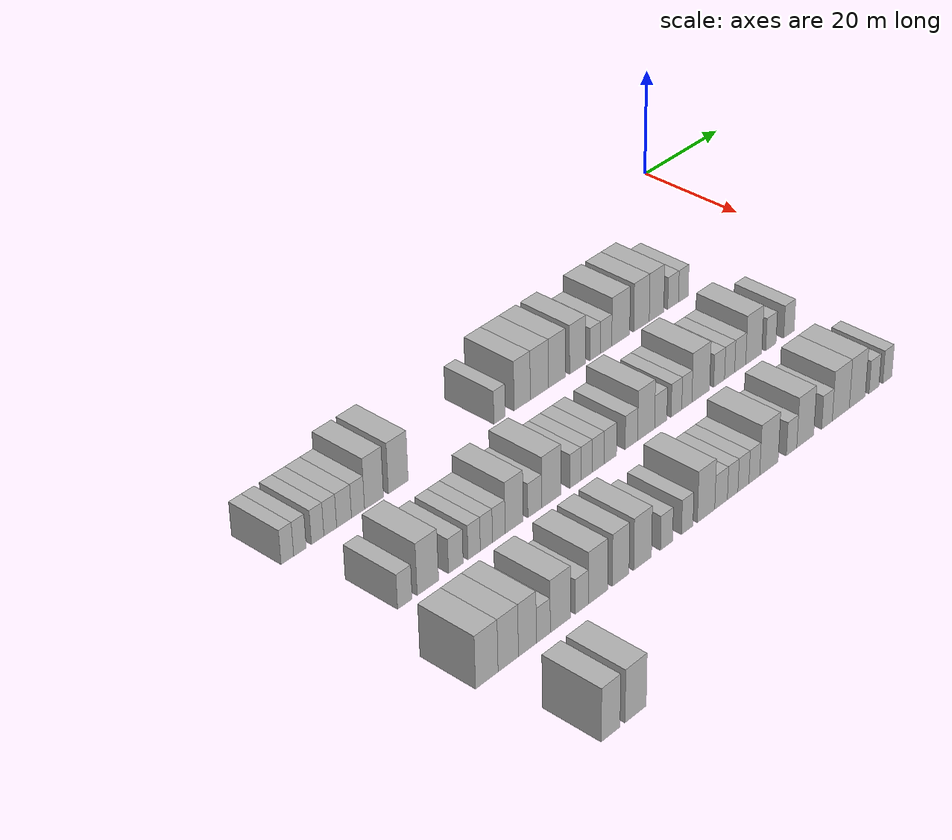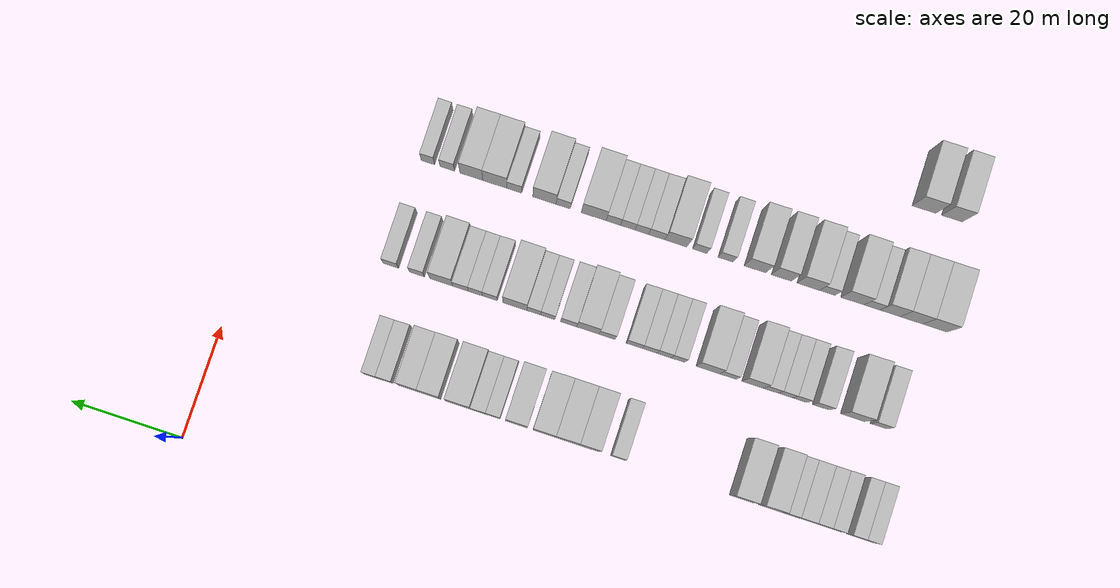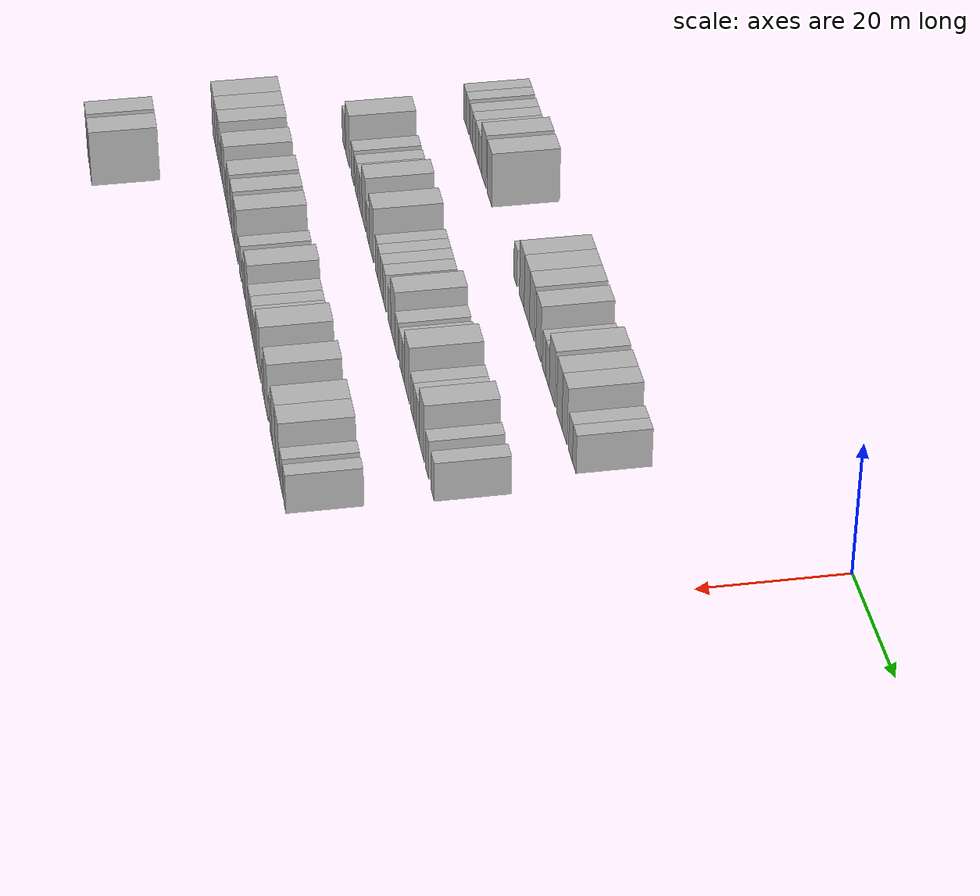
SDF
<sdf version="1.6">
 <world name="default">
  <model name="building_62">
   <static>1</static>
   <pose>25.0000 -115.1257 0 0.000000 0.000000 0.000000</pose>
   <link name="link">
    <pose>0 0 3.00 0 0 0</pose>
    <collision name="collision"><geometry><box><size>10.0000 2.4393 6.0000</size></box></geometry></collision>
    <visual name="visual">
     <cast_shadows>0</cast_shadows>
     <geometry><box><size>10.0000 2.4393 6.0000</size></box></geometry>
     <material>
      <script>
       <uri>model://HANNAS_wall/materials/scripts</uri>
       <uri>model://HANNAS_wall/materials/textures</uri>
       <name>vrc/HANNAS_wall</name>
      </script>
     </material>
    </visual>
   </link>
  </model>
  <model name="building_63">
   <static>1</static>
   <pose>25.0000 -112.6765 0 0.000000 0.000000 0.000000</pose>
   <link name="link">
    <pose>0 0 3.00 0 0 0</pose>
    <collision name="collision"><geometry><box><size>10.0000 2.4591 6.0000</size></box></geometry></collision>
    <visual name="visual">
     <cast_shadows>0</cast_shadows>
     <geometry><box><size>10.0000 2.4591 6.0000</size></box></geometry>
     <material>
      <script>
       <uri>model://HANNAS_wall/materials/scripts</uri>
       <uri>model://HANNAS_wall/materials/textures</uri>
       <name>vrc/HANNAS_wall</name>
      </script>
     </material>
    </visual>
   </link>
  </model>
  <model name="building_64">
   <static>1</static>
   <pose>25.0000 -109.2136 0 0.000000 0.000000 0.000000</pose>
   <link name="link">
    <pose>0 0 3.00 0 0 0</pose>
    <collision name="collision"><geometry><box><size>10.0000 2.4668 6.0000</size></box></geometry></collision>
    <visual name="visual">
     <cast_shadows>0</cast_shadows>
     <geometry><box><size>10.0000 2.4668 6.0000</size></box></geometry>
     <material>
      <script>
       <uri>model://HANNAS_wall/materials/scripts</uri>
       <uri>model://HANNAS_wall/materials/textures</uri>
       <name>vrc/HANNAS_wall</name>
      </script>
     </material>
    </visual>
   </link>
  </model>
  <model name="building_65">
   <static>1</static>
   <pose>25.0000 -106.7141 0 0.000000 0.000000 0.000000</pose>
   <link name="link">
    <pose>0 0 3.00 0 0 0</pose>
    <collision name="collision"><geometry><box><size>10.0000 2.5322 6.0000</size></box></geometry></collision>
    <visual name="visual">
     <cast_shadows>0</cast_shadows>
     <geometry><box><size>10.0000 2.5322 6.0000</size></box></geometry>
     <material>
      <script>
       <uri>model://HANNAS_wall/materials/scripts</uri>
       <uri>model://HANNAS_wall/materials/textures</uri>
       <name>vrc/HANNAS_wall</name>
      </script>
     </material>
    </visual>
   </link>
  </model>
  <model name="building_66">
   <static>1</static>
   <pose>25.0000 -103.9539 0 0.000000 0.000000 0.000000</pose>
   <link name="link">
    <pose>0 0 3.00 0 0 0</pose>
    <collision name="collision"><geometry><box><size>10.0000 2.9881 6.0000</size></box></geometry></collision>
    <visual name="visual">
     <cast_shadows>0</cast_shadows>
     <geometry><box><size>10.0000 2.9881 6.0000</size></box></geometry>
     <material>
      <script>
       <uri>model://HANNAS_wall/materials/scripts</uri>
       <uri>model://HANNAS_wall/materials/textures</uri>
       <name>vrc/HANNAS_wall</name>
      </script>
     </material>
    </visual>
   </link>
  </model>
  <model name="building_67">
   <static>1</static>
   <pose>25.0000 -101.1364 0 0.000000 0.000000 0.000000</pose>
   <link name="link">
    <pose>0 0 3.00 0 0 0</pose>
    <collision name="collision"><geometry><box><size>10.0000 2.6470 6.0000</size></box></geometry></collision>
    <visual name="visual">
     <cast_shadows>0</cast_shadows>
     <geometry><box><size>10.0000 2.6470 6.0000</size></box></geometry>
     <material>
      <script>
       <uri>model://HANNAS_wall/materials/scripts</uri>
       <uri>model://HANNAS_wall/materials/textures</uri>
       <name>vrc/HANNAS_wall</name>
      </script>
     </material>
    </visual>
   </link>
  </model>
  <model name="building_68">
   <static>1</static>
   <pose>25.0000 -97.8725 0 0.000000 0.000000 0.000000</pose>
   <link name="link">
    <pose>0 0 4.50 0 0 0</pose>
    <collision name="collision"><geometry><box><size>10.0000 3.8809 9.0000</size></box></geometry></collision>
    <visual name="visual">
     <cast_shadows>0</cast_shadows>
     <geometry><box><size>10.0000 3.8809 9.0000</size></box></geometry>
     <material>
      <script>
       <uri>model://HANNAS_wall/materials/scripts</uri>
       <uri>model://HANNAS_wall/materials/textures</uri>
       <name>vrc/HANNAS_wall</name>
      </script>
     </material>
    </visual>
   </link>
  </model>
  <model name="building_69">
   <static>1</static>
   <pose>25.0000 -92.8758 0 0.000000 0.000000 0.000000</pose>
   <link name="link">
    <pose>0 0 4.50 0 0 0</pose>
    <collision name="collision"><geometry><box><size>10.0000 4.1125 9.0000</size></box></geometry></collision>
    <visual name="visual">
     <cast_shadows>0</cast_shadows>
     <geometry><box><size>10.0000 4.1125 9.0000</size></box></geometry>
     <material>
      <script>
       <uri>model://HANNAS_wall/materials/scripts</uri>
       <uri>model://HANNAS_wall/materials/textures</uri>
       <name>vrc/HANNAS_wall</name>
      </script>
     </material>
    </visual>
   </link>
  </model>
  <model name="building_70">
   <static>1</static>
   <pose>25.0000 -71.0035 0 0.000000 0.000000 0.000000</pose>
   <link name="link">
    <pose>0 0 3.00 0 0 0</pose>
    <collision name="collision"><geometry><box><size>10.0000 2.5440 6.0000</size></box></geometry></collision>
    <visual name="visual">
     <cast_shadows>0</cast_shadows>
     <geometry><box><size>10.0000 2.5440 6.0000</size></box></geometry>
     <material>
      <script>
       <uri>model://HANNAS_wall/materials/scripts</uri>
       <uri>model://HANNAS_wall/materials/textures</uri>
       <name>vrc/HANNAS_wall</name>
      </script>
     </material>
    </visual>
   </link>
  </model>
  <model name="building_71">
   <static>1</static>
   <pose>25.0000 -65.8801 0 0.000000 0.000000 0.000000</pose>
   <link name="link">
    <pose>0 0 4.50 0 0 0</pose>
    <collision name="collision"><geometry><box><size>10.0000 3.7028 9.0000</size></box></geometry></collision>
    <visual name="visual">
     <cast_shadows>0</cast_shadows>
     <geometry><box><size>10.0000 3.7028 9.0000</size></box></geometry>
     <material>
      <script>
       <uri>model://HANNAS_wall/materials/scripts</uri>
       <uri>model://HANNAS_wall/materials/textures</uri>
       <name>vrc/HANNAS_wall</name>
      </script>
     </material>
    </visual>
   </link>
  </model>
  <model name="building_72">
   <static>1</static>
   <pose>25.0000 -61.9524 0 0.000000 0.000000 0.000000</pose>
   <link name="link">
    <pose>0 0 4.50 0 0 0</pose>
    <collision name="collision"><geometry><box><size>10.0000 4.1525 9.0000</size></box></geometry></collision>
    <visual name="visual">
     <cast_shadows>0</cast_shadows>
     <geometry><box><size>10.0000 4.1525 9.0000</size></box></geometry>
     <material>
      <script>
       <uri>model://HANNAS_wall/materials/scripts</uri>
       <uri>model://HANNAS_wall/materials/textures</uri>
       <name>vrc/HANNAS_wall</name>
      </script>
     </material>
    </visual>
   </link>
  </model>
  <model name="building_73">
   <static>1</static>
   <pose>25.0000 -57.9038 0 0.000000 0.000000 0.000000</pose>
   <link name="link">
    <pose>0 0 4.50 0 0 0</pose>
    <collision name="collision"><geometry><box><size>10.0000 3.9448 9.0000</size></box></geometry></collision>
    <visual name="visual">
     <cast_shadows>0</cast_shadows>
     <geometry><box><size>10.0000 3.9448 9.0000</size></box></geometry>
     <material>
      <script>
       <uri>model://HANNAS_wall/materials/scripts</uri>
       <uri>model://HANNAS_wall/materials/textures</uri>
       <name>vrc/HANNAS_wall</name>
      </script>
     </material>
    </visual>
   </link>
  </model>
  <model name="building_74">
   <static>1</static>
   <pose>25.0000 -53.0082 0 0.000000 0.000000 0.000000</pose>
   <link name="link">
    <pose>0 0 4.50 0 0 0</pose>
    <collision name="collision"><geometry><box><size>10.0000 3.8463 9.0000</size></box></geometry></collision>
    <visual name="visual">
     <cast_shadows>0</cast_shadows>
     <geometry><box><size>10.0000 3.8463 9.0000</size></box></geometry>
     <material>
      <script>
       <uri>model://HANNAS_wall/materials/scripts</uri>
       <uri>model://HANNAS_wall/materials/textures</uri>
       <name>vrc/HANNAS_wall</name>
      </script>
     </material>
    </visual>
   </link>
  </model>
  <model name="building_75">
   <static>1</static>
   <pose>25.0000 -48.8169 0 0.000000 0.000000 0.000000</pose>
   <link name="link">
    <pose>0 0 3.00 0 0 0</pose>
    <collision name="collision"><geometry><box><size>10.0000 2.5363 6.0000</size></box></geometry></collision>
    <visual name="visual">
     <cast_shadows>0</cast_shadows>
     <geometry><box><size>10.0000 2.5363 6.0000</size></box></geometry>
     <material>
      <script>
       <uri>model://HANNAS_wall/materials/scripts</uri>
       <uri>model://HANNAS_wall/materials/textures</uri>
       <name>vrc/HANNAS_wall</name>
      </script>
     </material>
    </visual>
   </link>
  </model>
  <model name="building_76">
   <static>1</static>
   <pose>25.0000 -46.1847 0 0.000000 0.000000 0.000000</pose>
   <link name="link">
    <pose>0 0 3.00 0 0 0</pose>
    <collision name="collision"><geometry><box><size>10.0000 2.7281 6.0000</size></box></geometry></collision>
    <visual name="visual">
     <cast_shadows>0</cast_shadows>
     <geometry><box><size>10.0000 2.7281 6.0000</size></box></geometry>
     <material>
      <script>
       <uri>model://HANNAS_wall/materials/scripts</uri>
       <uri>model://HANNAS_wall/materials/textures</uri>
       <name>vrc/HANNAS_wall</name>
      </script>
     </material>
    </visual>
   </link>
  </model>
  <model name="building_77">
   <static>1</static>
   <pose>25.0000 -42.6312 0 0.000000 0.000000 0.000000</pose>
   <link name="link">
    <pose>0 0 4.50 0 0 0</pose>
    <collision name="collision"><geometry><box><size>10.0000 4.3788 9.0000</size></box></geometry></collision>
    <visual name="visual">
     <cast_shadows>0</cast_shadows>
     <geometry><box><size>10.0000 4.3788 9.0000</size></box></geometry>
     <material>
      <script>
       <uri>model://HANNAS_wall/materials/scripts</uri>
       <uri>model://HANNAS_wall/materials/textures</uri>
       <name>vrc/HANNAS_wall</name>
      </script>
     </material>
    </visual>
   </link>
  </model>
  <model name="building_78">
   <static>1</static>
   <pose>25.0000 -37.5233 0 0.000000 0.000000 0.000000</pose>
   <link name="link">
    <pose>0 0 4.50 0 0 0</pose>
    <collision name="collision"><geometry><box><size>10.0000 3.8369 9.0000</size></box></geometry></collision>
    <visual name="visual">
     <cast_shadows>0</cast_shadows>
     <geometry><box><size>10.0000 3.8369 9.0000</size></box></geometry>
     <material>
      <script>
       <uri>model://HANNAS_wall/materials/scripts</uri>
       <uri>model://HANNAS_wall/materials/textures</uri>
       <name>vrc/HANNAS_wall</name>
      </script>
     </material>
    </visual>
   </link>
  </model>
  <model name="building_79">
   <static>1</static>
   <pose>25.0000 -33.7689 0 0.000000 0.000000 0.000000</pose>
   <link name="link">
    <pose>0 0 4.50 0 0 0</pose>
    <collision name="collision"><geometry><box><size>10.0000 3.6720 9.0000</size></box></geometry></collision>
    <visual name="visual">
     <cast_shadows>0</cast_shadows>
     <geometry><box><size>10.0000 3.6720 9.0000</size></box></geometry>
     <material>
      <script>
       <uri>model://HANNAS_wall/materials/scripts</uri>
       <uri>model://HANNAS_wall/materials/textures</uri>
       <name>vrc/HANNAS_wall</name>
      </script>
     </material>
    </visual>
   </link>
  </model>
  <model name="building_80">
   <static>1</static>
   <pose>25.0000 -29.5652 0 0.000000 0.000000 0.000000</pose>
   <link name="link">
    <pose>0 0 3.00 0 0 0</pose>
    <collision name="collision"><geometry><box><size>10.0000 2.7355 6.0000</size></box></geometry></collision>
    <visual name="visual">
     <cast_shadows>0</cast_shadows>
     <geometry><box><size>10.0000 2.7355 6.0000</size></box></geometry>
     <material>
      <script>
       <uri>model://HANNAS_wall/materials/scripts</uri>
       <uri>model://HANNAS_wall/materials/textures</uri>
       <name>vrc/HANNAS_wall</name>
      </script>
     </material>
    </visual>
   </link>
  </model>
  <model name="building_81">
   <static>1</static>
   <pose>25.0000 -26.9501 0 0.000000 0.000000 0.000000</pose>
   <link name="link">
    <pose>0 0 3.00 0 0 0</pose>
    <collision name="collision"><geometry><box><size>10.0000 2.4946 6.0000</size></box></geometry></collision>
    <visual name="visual">
     <cast_shadows>0</cast_shadows>
     <geometry><box><size>10.0000 2.4946 6.0000</size></box></geometry>
     <material>
      <script>
       <uri>model://HANNAS_wall/materials/scripts</uri>
       <uri>model://HANNAS_wall/materials/textures</uri>
       <name>vrc/HANNAS_wall</name>
      </script>
     </material>
    </visual>
   </link>
  </model>
  <model name="building_235">
   <static>1</static>
   <pose>44.0000 -111.3308 0 0.000000 0.000000 0.000000</pose>
   <link name="link">
    <pose>0 0 3.00 0 0 0</pose>
    <collision name="collision"><geometry><box><size>10.0000 2.8627 6.0000</size></box></geometry></collision>
    <visual name="visual">
     <cast_shadows>0</cast_shadows>
     <geometry><box><size>10.0000 2.8627 6.0000</size></box></geometry>
     <material>
      <script>
       <uri>model://HANNAS_wall/materials/scripts</uri>
       <uri>model://HANNAS_wall/materials/textures</uri>
       <name>vrc/HANNAS_wall</name>
      </script>
     </material>
    </visual>
   </link>
  </model>
  <model name="building_236">
   <static>1</static>
   <pose>44.0000 -106.7560 0 0.000000 0.000000 0.000000</pose>
   <link name="link">
    <pose>0 0 4.50 0 0 0</pose>
    <collision name="collision"><geometry><box><size>10.0000 4.2868 9.0000</size></box></geometry></collision>
    <visual name="visual">
     <cast_shadows>0</cast_shadows>
     <geometry><box><size>10.0000 4.2868 9.0000</size></box></geometry>
     <material>
      <script>
       <uri>model://HANNAS_wall/materials/scripts</uri>
       <uri>model://HANNAS_wall/materials/textures</uri>
       <name>vrc/HANNAS_wall</name>
      </script>
     </material>
    </visual>
   </link>
  </model>
  <model name="building_237">
   <static>1</static>
   <pose>44.0000 -101.1149 0 0.000000 0.000000 0.000000</pose>
   <link name="link">
    <pose>0 0 3.00 0 0 0</pose>
    <collision name="collision"><geometry><box><size>10.0000 2.9955 6.0000</size></box></geometry></collision>
    <visual name="visual">
     <cast_shadows>0</cast_shadows>
     <geometry><box><size>10.0000 2.9955 6.0000</size></box></geometry>
     <material>
      <script>
       <uri>model://HANNAS_wall/materials/scripts</uri>
       <uri>model://HANNAS_wall/materials/textures</uri>
       <name>vrc/HANNAS_wall</name>
      </script>
     </material>
    </visual>
   </link>
  </model>
  <model name="building_238">
   <static>1</static>
   <pose>44.0000 -97.3443 0 0.000000 0.000000 0.000000</pose>
   <link name="link">
    <pose>0 0 3.00 0 0 0</pose>
    <collision name="collision"><geometry><box><size>10.0000 2.5456 6.0000</size></box></geometry></collision>
    <visual name="visual">
     <cast_shadows>0</cast_shadows>
     <geometry><box><size>10.0000 2.5456 6.0000</size></box></geometry>
     <material>
      <script>
       <uri>model://HANNAS_wall/materials/scripts</uri>
       <uri>model://HANNAS_wall/materials/textures</uri>
       <name>vrc/HANNAS_wall</name>
      </script>
     </material>
    </visual>
   </link>
  </model>
  <model name="building_239">
   <static>1</static>
   <pose>44.0000 -94.8010 0 0.000000 0.000000 0.000000</pose>
   <link name="link">
    <pose>0 0 3.00 0 0 0</pose>
    <collision name="collision"><geometry><box><size>10.0000 2.5409 6.0000</size></box></geometry></collision>
    <visual name="visual">
     <cast_shadows>0</cast_shadows>
     <geometry><box><size>10.0000 2.5409 6.0000</size></box></geometry>
     <material>
      <script>
       <uri>model://HANNAS_wall/materials/scripts</uri>
       <uri>model://HANNAS_wall/materials/textures</uri>
       <name>vrc/HANNAS_wall</name>
      </script>
     </material>
    </visual>
   </link>
  </model>
  <model name="building_240">
   <static>1</static>
   <pose>44.0000 -92.1967 0 0.000000 0.000000 0.000000</pose>
   <link name="link">
    <pose>0 0 3.00 0 0 0</pose>
    <collision name="collision"><geometry><box><size>10.0000 2.6677 6.0000</size></box></geometry></collision>
    <visual name="visual">
     <cast_shadows>0</cast_shadows>
     <geometry><box><size>10.0000 2.6677 6.0000</size></box></geometry>
     <material>
      <script>
       <uri>model://HANNAS_wall/materials/scripts</uri>
       <uri>model://HANNAS_wall/materials/textures</uri>
       <name>vrc/HANNAS_wall</name>
      </script>
     </material>
    </visual>
   </link>
  </model>
  <model name="building_241">
   <static>1</static>
   <pose>44.0000 -88.9540 0 0.000000 0.000000 0.000000</pose>
   <link name="link">
    <pose>0 0 4.50 0 0 0</pose>
    <collision name="collision"><geometry><box><size>10.0000 3.8177 9.0000</size></box></geometry></collision>
    <visual name="visual">
     <cast_shadows>0</cast_shadows>
     <geometry><box><size>10.0000 3.8177 9.0000</size></box></geometry>
     <material>
      <script>
       <uri>model://HANNAS_wall/materials/scripts</uri>
       <uri>model://HANNAS_wall/materials/textures</uri>
       <name>vrc/HANNAS_wall</name>
      </script>
     </material>
    </visual>
   </link>
  </model>
  <model name="building_242">
   <static>1</static>
   <pose>44.0000 -84.5550 0 0.000000 0.000000 0.000000</pose>
   <link name="link">
    <pose>0 0 3.00 0 0 0</pose>
    <collision name="collision"><geometry><box><size>10.0000 2.9803 6.0000</size></box></geometry></collision>
    <visual name="visual">
     <cast_shadows>0</cast_shadows>
     <geometry><box><size>10.0000 2.9803 6.0000</size></box></geometry>
     <material>
      <script>
       <uri>model://HANNAS_wall/materials/scripts</uri>
       <uri>model://HANNAS_wall/materials/textures</uri>
       <name>vrc/HANNAS_wall</name>
      </script>
     </material>
    </visual>
   </link>
  </model>
  <model name="building_243">
   <static>1</static>
   <pose>44.0000 -80.9716 0 0.000000 0.000000 0.000000</pose>
   <link name="link">
    <pose>0 0 4.50 0 0 0</pose>
    <collision name="collision"><geometry><box><size>10.0000 4.1866 9.0000</size></box></geometry></collision>
    <visual name="visual">
     <cast_shadows>0</cast_shadows>
     <geometry><box><size>10.0000 4.1866 9.0000</size></box></geometry>
     <material>
      <script>
       <uri>model://HANNAS_wall/materials/scripts</uri>
       <uri>model://HANNAS_wall/materials/textures</uri>
       <name>vrc/HANNAS_wall</name>
      </script>
     </material>
    </visual>
   </link>
  </model>
  <model name="building_244">
   <static>1</static>
   <pose>44.0000 -75.6663 0 0.000000 0.000000 0.000000</pose>
   <link name="link">
    <pose>0 0 3.00 0 0 0</pose>
    <collision name="collision"><geometry><box><size>10.0000 2.4240 6.0000</size></box></geometry></collision>
    <visual name="visual">
     <cast_shadows>0</cast_shadows>
     <geometry><box><size>10.0000 2.4240 6.0000</size></box></geometry>
     <material>
      <script>
       <uri>model://HANNAS_wall/materials/scripts</uri>
       <uri>model://HANNAS_wall/materials/textures</uri>
       <name>vrc/HANNAS_wall</name>
      </script>
     </material>
    </visual>
   </link>
  </model>
  <model name="building_245">
   <static>1</static>
   <pose>44.0000 -73.1780 0 0.000000 0.000000 0.000000</pose>
   <link name="link">
    <pose>0 0 3.00 0 0 0</pose>
    <collision name="collision"><geometry><box><size>10.0000 2.5525 6.0000</size></box></geometry></collision>
    <visual name="visual">
     <cast_shadows>0</cast_shadows>
     <geometry><box><size>10.0000 2.5525 6.0000</size></box></geometry>
     <material>
      <script>
       <uri>model://HANNAS_wall/materials/scripts</uri>
       <uri>model://HANNAS_wall/materials/textures</uri>
       <name>vrc/HANNAS_wall</name>
      </script>
     </material>
    </visual>
   </link>
  </model>
  <model name="building_246">
   <static>1</static>
   <pose>44.0000 -70.5518 0 0.000000 0.000000 0.000000</pose>
   <link name="link">
    <pose>0 0 3.00 0 0 0</pose>
    <collision name="collision"><geometry><box><size>10.0000 2.7000 6.0000</size></box></geometry></collision>
    <visual name="visual">
     <cast_shadows>0</cast_shadows>
     <geometry><box><size>10.0000 2.7000 6.0000</size></box></geometry>
     <material>
      <script>
       <uri>model://HANNAS_wall/materials/scripts</uri>
       <uri>model://HANNAS_wall/materials/textures</uri>
       <name>vrc/HANNAS_wall</name>
      </script>
     </material>
    </visual>
   </link>
  </model>
  <model name="building_247">
   <static>1</static>
   <pose>44.0000 -67.7965 0 0.000000 0.000000 0.000000</pose>
   <link name="link">
    <pose>0 0 3.00 0 0 0</pose>
    <collision name="collision"><geometry><box><size>10.0000 2.8105 6.0000</size></box></geometry></collision>
    <visual name="visual">
     <cast_shadows>0</cast_shadows>
     <geometry><box><size>10.0000 2.8105 6.0000</size></box></geometry>
     <material>
      <script>
       <uri>model://HANNAS_wall/materials/scripts</uri>
       <uri>model://HANNAS_wall/materials/textures</uri>
       <name>vrc/HANNAS_wall</name>
      </script>
     </material>
    </visual>
   </link>
  </model>
  <model name="building_248">
   <static>1</static>
   <pose>44.0000 -62.9490 0 0.000000 0.000000 0.000000</pose>
   <link name="link">
    <pose>0 0 3.00 0 0 0</pose>
    <collision name="collision"><geometry><box><size>10.0000 2.8845 6.0000</size></box></geometry></collision>
    <visual name="visual">
     <cast_shadows>0</cast_shadows>
     <geometry><box><size>10.0000 2.8845 6.0000</size></box></geometry>
     <material>
      <script>
       <uri>model://HANNAS_wall/materials/scripts</uri>
       <uri>model://HANNAS_wall/materials/textures</uri>
       <name>vrc/HANNAS_wall</name>
      </script>
     </material>
    </visual>
   </link>
  </model>
  <model name="building_249">
   <static>1</static>
   <pose>44.0000 -59.5218 0 0.000000 0.000000 0.000000</pose>
   <link name="link">
    <pose>0 0 4.50 0 0 0</pose>
    <collision name="collision"><geometry><box><size>10.0000 3.9699 9.0000</size></box></geometry></collision>
    <visual name="visual">
     <cast_shadows>0</cast_shadows>
     <geometry><box><size>10.0000 3.9699 9.0000</size></box></geometry>
     <material>
      <script>
       <uri>model://HANNAS_wall/materials/scripts</uri>
       <uri>model://HANNAS_wall/materials/textures</uri>
       <name>vrc/HANNAS_wall</name>
      </script>
     </material>
    </visual>
   </link>
  </model>
  <model name="building_250">
   <static>1</static>
   <pose>44.0000 -56.0736 0 0.000000 0.000000 0.000000</pose>
   <link name="link">
    <pose>0 0 3.00 0 0 0</pose>
    <collision name="collision"><geometry><box><size>10.0000 2.9265 6.0000</size></box></geometry></collision>
    <visual name="visual">
     <cast_shadows>0</cast_shadows>
     <geometry><box><size>10.0000 2.9265 6.0000</size></box></geometry>
     <material>
      <script>
       <uri>model://HANNAS_wall/materials/scripts</uri>
       <uri>model://HANNAS_wall/materials/textures</uri>
       <name>vrc/HANNAS_wall</name>
      </script>
     </material>
    </visual>
   </link>
  </model>
  <model name="building_251">
   <static>1</static>
   <pose>44.0000 -52.3307 0 0.000000 0.000000 0.000000</pose>
   <link name="link">
    <pose>0 0 3.00 0 0 0</pose>
    <collision name="collision"><geometry><box><size>10.0000 2.5593 6.0000</size></box></geometry></collision>
    <visual name="visual">
     <cast_shadows>0</cast_shadows>
     <geometry><box><size>10.0000 2.5593 6.0000</size></box></geometry>
     <material>
      <script>
       <uri>model://HANNAS_wall/materials/scripts</uri>
       <uri>model://HANNAS_wall/materials/textures</uri>
       <name>vrc/HANNAS_wall</name>
      </script>
     </material>
    </visual>
   </link>
  </model>
  <model name="building_252">
   <static>1</static>
   <pose>44.0000 -49.8270 0 0.000000 0.000000 0.000000</pose>
   <link name="link">
    <pose>0 0 3.00 0 0 0</pose>
    <collision name="collision"><geometry><box><size>10.0000 2.4481 6.0000</size></box></geometry></collision>
    <visual name="visual">
     <cast_shadows>0</cast_shadows>
     <geometry><box><size>10.0000 2.4481 6.0000</size></box></geometry>
     <material>
      <script>
       <uri>model://HANNAS_wall/materials/scripts</uri>
       <uri>model://HANNAS_wall/materials/textures</uri>
       <name>vrc/HANNAS_wall</name>
      </script>
     </material>
    </visual>
   </link>
  </model>
  <model name="building_253">
   <static>1</static>
   <pose>44.0000 -46.4347 0 0.000000 0.000000 0.000000</pose>
   <link name="link">
    <pose>0 0 4.50 0 0 0</pose>
    <collision name="collision"><geometry><box><size>10.0000 4.3364 9.0000</size></box></geometry></collision>
    <visual name="visual">
     <cast_shadows>0</cast_shadows>
     <geometry><box><size>10.0000 4.3364 9.0000</size></box></geometry>
     <material>
      <script>
       <uri>model://HANNAS_wall/materials/scripts</uri>
       <uri>model://HANNAS_wall/materials/textures</uri>
       <name>vrc/HANNAS_wall</name>
      </script>
     </material>
    </visual>
   </link>
  </model>
  <model name="building_254">
   <static>1</static>
   <pose>44.0000 -41.9183 0 0.000000 0.000000 0.000000</pose>
   <link name="link">
    <pose>0 0 3.00 0 0 0</pose>
    <collision name="collision"><geometry><box><size>10.0000 2.6965 6.0000</size></box></geometry></collision>
    <visual name="visual">
     <cast_shadows>0</cast_shadows>
     <geometry><box><size>10.0000 2.6965 6.0000</size></box></geometry>
     <material>
      <script>
       <uri>model://HANNAS_wall/materials/scripts</uri>
       <uri>model://HANNAS_wall/materials/textures</uri>
       <name>vrc/HANNAS_wall</name>
      </script>
     </material>
    </visual>
   </link>
  </model>
  <model name="building_255">
   <static>1</static>
   <pose>44.0000 -39.3065 0 0.000000 0.000000 0.000000</pose>
   <link name="link">
    <pose>0 0 3.00 0 0 0</pose>
    <collision name="collision"><geometry><box><size>10.0000 2.5271 6.0000</size></box></geometry></collision>
    <visual name="visual">
     <cast_shadows>0</cast_shadows>
     <geometry><box><size>10.0000 2.5271 6.0000</size></box></geometry>
     <material>
      <script>
       <uri>model://HANNAS_wall/materials/scripts</uri>
       <uri>model://HANNAS_wall/materials/textures</uri>
       <name>vrc/HANNAS_wall</name>
      </script>
     </material>
    </visual>
   </link>
  </model>
  <model name="building_256">
   <static>1</static>
   <pose>44.0000 -36.6464 0 0.000000 0.000000 0.000000</pose>
   <link name="link">
    <pose>0 0 3.00 0 0 0</pose>
    <collision name="collision"><geometry><box><size>10.0000 2.7929 6.0000</size></box></geometry></collision>
    <visual name="visual">
     <cast_shadows>0</cast_shadows>
     <geometry><box><size>10.0000 2.7929 6.0000</size></box></geometry>
     <material>
      <script>
       <uri>model://HANNAS_wall/materials/scripts</uri>
       <uri>model://HANNAS_wall/materials/textures</uri>
       <name>vrc/HANNAS_wall</name>
      </script>
     </material>
    </visual>
   </link>
  </model>
  <model name="building_257">
   <static>1</static>
   <pose>44.0000 -33.1999 0 0.000000 0.000000 0.000000</pose>
   <link name="link">
    <pose>0 0 4.50 0 0 0</pose>
    <collision name="collision"><geometry><box><size>10.0000 4.1001 9.0000</size></box></geometry></collision>
    <visual name="visual">
     <cast_shadows>0</cast_shadows>
     <geometry><box><size>10.0000 4.1001 9.0000</size></box></geometry>
     <material>
      <script>
       <uri>model://HANNAS_wall/materials/scripts</uri>
       <uri>model://HANNAS_wall/materials/textures</uri>
       <name>vrc/HANNAS_wall</name>
      </script>
     </material>
    </visual>
   </link>
  </model>
  <model name="building_258">
   <static>1</static>
   <pose>44.0000 -28.8112 0 0.000000 0.000000 0.000000</pose>
   <link name="link">
    <pose>0 0 3.00 0 0 0</pose>
    <collision name="collision"><geometry><box><size>10.0000 2.6773 6.0000</size></box></geometry></collision>
    <visual name="visual">
     <cast_shadows>0</cast_shadows>
     <geometry><box><size>10.0000 2.6773 6.0000</size></box></geometry>
     <material>
      <script>
       <uri>model://HANNAS_wall/materials/scripts</uri>
       <uri>model://HANNAS_wall/materials/textures</uri>
       <name>vrc/HANNAS_wall</name>
      </script>
     </material>
    </visual>
   </link>
  </model>
  <model name="building_259">
   <static>1</static>
   <pose>44.0000 -24.1032 0 0.000000 0.000000 0.000000</pose>
   <link name="link">
    <pose>0 0 3.00 0 0 0</pose>
    <collision name="collision"><geometry><box><size>10.0000 2.7388 6.0000</size></box></geometry></collision>
    <visual name="visual">
     <cast_shadows>0</cast_shadows>
     <geometry><box><size>10.0000 2.7388 6.0000</size></box></geometry>
     <material>
      <script>
       <uri>model://HANNAS_wall/materials/scripts</uri>
       <uri>model://HANNAS_wall/materials/textures</uri>
       <name>vrc/HANNAS_wall</name>
      </script>
     </material>
    </visual>
   </link>
  </model>
  <model name="building_413">
   <static>1</static>
   <pose>63.0000 -115.6176 0 0.000000 0.000000 0.000000</pose>
   <link name="link">
    <pose>0 0 4.50 0 0 0</pose>
    <collision name="collision"><geometry><box><size>10.0000 4.4081 9.0000</size></box></geometry></collision>
    <visual name="visual">
     <cast_shadows>0</cast_shadows>
     <geometry><box><size>10.0000 4.4081 9.0000</size></box></geometry>
     <material>
      <script>
       <uri>model://HANNAS_wall/materials/scripts</uri>
       <uri>model://HANNAS_wall/materials/textures</uri>
       <name>vrc/HANNAS_wall</name>
      </script>
     </material>
    </visual>
   </link>
  </model>
  <model name="building_414">
   <static>1</static>
   <pose>63.0000 -111.3985 0 0.000000 0.000000 0.000000</pose>
   <link name="link">
    <pose>0 0 4.50 0 0 0</pose>
    <collision name="collision"><geometry><box><size>10.0000 4.0301 9.0000</size></box></geometry></collision>
    <visual name="visual">
     <cast_shadows>0</cast_shadows>
     <geometry><box><size>10.0000 4.0301 9.0000</size></box></geometry>
     <material>
      <script>
       <uri>model://HANNAS_wall/materials/scripts</uri>
       <uri>model://HANNAS_wall/materials/textures</uri>
       <name>vrc/HANNAS_wall</name>
      </script>
     </material>
    </visual>
   </link>
  </model>
  <model name="building_415">
   <static>1</static>
   <pose>63.0000 -107.5799 0 0.000000 0.000000 0.000000</pose>
   <link name="link">
    <pose>0 0 4.50 0 0 0</pose>
    <collision name="collision"><geometry><box><size>10.0000 3.6071 9.0000</size></box></geometry></collision>
    <visual name="visual">
     <cast_shadows>0</cast_shadows>
     <geometry><box><size>10.0000 3.6071 9.0000</size></box></geometry>
     <material>
      <script>
       <uri>model://HANNAS_wall/materials/scripts</uri>
       <uri>model://HANNAS_wall/materials/textures</uri>
       <name>vrc/HANNAS_wall</name>
      </script>
     </material>
    </visual>
   </link>
  </model>
  <model name="building_416">
   <static>1</static>
   <pose>63.0000 -104.3647 0 0.000000 0.000000 0.000000</pose>
   <link name="link">
    <pose>0 0 3.00 0 0 0</pose>
    <collision name="collision"><geometry><box><size>10.0000 2.8233 6.0000</size></box></geometry></collision>
    <visual name="visual">
     <cast_shadows>0</cast_shadows>
     <geometry><box><size>10.0000 2.8233 6.0000</size></box></geometry>
     <material>
      <script>
       <uri>model://HANNAS_wall/materials/scripts</uri>
       <uri>model://HANNAS_wall/materials/textures</uri>
       <name>vrc/HANNAS_wall</name>
      </script>
     </material>
    </visual>
   </link>
  </model>
  <model name="building_417">
   <static>1</static>
   <pose>63.0000 -100.8755 0 0.000000 0.000000 0.000000</pose>
   <link name="link">
    <pose>0 0 4.50 0 0 0</pose>
    <collision name="collision"><geometry><box><size>10.0000 4.1551 9.0000</size></box></geometry></collision>
    <visual name="visual">
     <cast_shadows>0</cast_shadows>
     <geometry><box><size>10.0000 4.1551 9.0000</size></box></geometry>
     <material>
      <script>
       <uri>model://HANNAS_wall/materials/scripts</uri>
       <uri>model://HANNAS_wall/materials/textures</uri>
       <name>vrc/HANNAS_wall</name>
      </script>
     </material>
    </visual>
   </link>
  </model>
  <model name="building_418">
   <static>1</static>
   <pose>63.0000 -96.4179 0 0.000000 0.000000 0.000000</pose>
   <link name="link">
    <pose>0 0 3.00 0 0 0</pose>
    <collision name="collision"><geometry><box><size>10.0000 2.7601 6.0000</size></box></geometry></collision>
    <visual name="visual">
     <cast_shadows>0</cast_shadows>
     <geometry><box><size>10.0000 2.7601 6.0000</size></box></geometry>
     <material>
      <script>
       <uri>model://HANNAS_wall/materials/scripts</uri>
       <uri>model://HANNAS_wall/materials/textures</uri>
       <name>vrc/HANNAS_wall</name>
      </script>
     </material>
    </visual>
   </link>
  </model>
  <model name="building_419">
   <static>1</static>
   <pose>63.0000 -93.0147 0 0.000000 0.000000 0.000000</pose>
   <link name="link">
    <pose>0 0 4.50 0 0 0</pose>
    <collision name="collision"><geometry><box><size>10.0000 4.0462 9.0000</size></box></geometry></collision>
    <visual name="visual">
     <cast_shadows>0</cast_shadows>
     <geometry><box><size>10.0000 4.0462 9.0000</size></box></geometry>
     <material>
      <script>
       <uri>model://HANNAS_wall/materials/scripts</uri>
       <uri>model://HANNAS_wall/materials/textures</uri>
       <name>vrc/HANNAS_wall</name>
      </script>
     </material>
    </visual>
   </link>
  </model>
  <model name="building_420">
   <static>1</static>
   <pose>63.0000 -88.1914 0 0.000000 0.000000 0.000000</pose>
   <link name="link">
    <pose>0 0 4.50 0 0 0</pose>
    <collision name="collision"><geometry><box><size>10.0000 3.6005 9.0000</size></box></geometry></collision>
    <visual name="visual">
     <cast_shadows>0</cast_shadows>
     <geometry><box><size>10.0000 3.6005 9.0000</size></box></geometry>
     <material>
      <script>
       <uri>model://HANNAS_wall/materials/scripts</uri>
       <uri>model://HANNAS_wall/materials/textures</uri>
       <name>vrc/HANNAS_wall</name>
      </script>
     </material>
    </visual>
   </link>
  </model>
  <model name="building_421">
   <static>1</static>
   <pose>63.0000 -83.4453 0 0.000000 0.000000 0.000000</pose>
   <link name="link">
    <pose>0 0 4.50 0 0 0</pose>
    <collision name="collision"><geometry><box><size>10.0000 3.8918 9.0000</size></box></geometry></collision>
    <visual name="visual">
     <cast_shadows>0</cast_shadows>
     <geometry><box><size>10.0000 3.8918 9.0000</size></box></geometry>
     <material>
      <script>
       <uri>model://HANNAS_wall/materials/scripts</uri>
       <uri>model://HANNAS_wall/materials/textures</uri>
       <name>vrc/HANNAS_wall</name>
      </script>
     </material>
    </visual>
   </link>
  </model>
  <model name="building_422">
   <static>1</static>
   <pose>63.0000 -78.1520 0 0.000000 0.000000 0.000000</pose>
   <link name="link">
    <pose>0 0 3.00 0 0 0</pose>
    <collision name="collision"><geometry><box><size>10.0000 2.6948 6.0000</size></box></geometry></collision>
    <visual name="visual">
     <cast_shadows>0</cast_shadows>
     <geometry><box><size>10.0000 2.6948 6.0000</size></box></geometry>
     <material>
      <script>
       <uri>model://HANNAS_wall/materials/scripts</uri>
       <uri>model://HANNAS_wall/materials/textures</uri>
       <name>vrc/HANNAS_wall</name>
      </script>
     </material>
    </visual>
   </link>
  </model>
  <model name="building_423">
   <static>1</static>
   <pose>63.0000 -73.5051 0 0.000000 0.000000 0.000000</pose>
   <link name="link">
    <pose>0 0 3.00 0 0 0</pose>
    <collision name="collision"><geometry><box><size>10.0000 2.5989 6.0000</size></box></geometry></collision>
    <visual name="visual">
     <cast_shadows>0</cast_shadows>
     <geometry><box><size>10.0000 2.5989 6.0000</size></box></geometry>
     <material>
      <script>
       <uri>model://HANNAS_wall/materials/scripts</uri>
       <uri>model://HANNAS_wall/materials/textures</uri>
       <name>vrc/HANNAS_wall</name>
      </script>
     </material>
    </visual>
   </link>
  </model>
  <model name="building_424">
   <static>1</static>
   <pose>63.0000 -69.2079 0 0.000000 0.000000 0.000000</pose>
   <link name="link">
    <pose>0 0 4.50 0 0 0</pose>
    <collision name="collision"><geometry><box><size>10.0000 3.9954 9.0000</size></box></geometry></collision>
    <visual name="visual">
     <cast_shadows>0</cast_shadows>
     <geometry><box><size>10.0000 3.9954 9.0000</size></box></geometry>
     <material>
      <script>
       <uri>model://HANNAS_wall/materials/scripts</uri>
       <uri>model://HANNAS_wall/materials/textures</uri>
       <name>vrc/HANNAS_wall</name>
      </script>
     </material>
    </visual>
   </link>
  </model>
  <model name="building_425">
   <static>1</static>
   <pose>63.0000 -65.7379 0 0.000000 0.000000 0.000000</pose>
   <link name="link">
    <pose>0 0 3.00 0 0 0</pose>
    <collision name="collision"><geometry><box><size>10.0000 2.9446 6.0000</size></box></geometry></collision>
    <visual name="visual">
     <cast_shadows>0</cast_shadows>
     <geometry><box><size>10.0000 2.9446 6.0000</size></box></geometry>
     <material>
      <script>
       <uri>model://HANNAS_wall/materials/scripts</uri>
       <uri>model://HANNAS_wall/materials/textures</uri>
       <name>vrc/HANNAS_wall</name>
      </script>
     </material>
    </visual>
   </link>
  </model>
  <model name="building_426">
   <static>1</static>
   <pose>63.0000 -63.0313 0 0.000000 0.000000 0.000000</pose>
   <link name="link">
    <pose>0 0 3.00 0 0 0</pose>
    <collision name="collision"><geometry><box><size>10.0000 2.4687 6.0000</size></box></geometry></collision>
    <visual name="visual">
     <cast_shadows>0</cast_shadows>
     <geometry><box><size>10.0000 2.4687 6.0000</size></box></geometry>
     <material>
      <script>
       <uri>model://HANNAS_wall/materials/scripts</uri>
       <uri>model://HANNAS_wall/materials/textures</uri>
       <name>vrc/HANNAS_wall</name>
      </script>
     </material>
    </visual>
   </link>
  </model>
  <model name="building_427">
   <static>1</static>
   <pose>63.0000 -60.5020 0 0.000000 0.000000 0.000000</pose>
   <link name="link">
    <pose>0 0 3.00 0 0 0</pose>
    <collision name="collision"><geometry><box><size>10.0000 2.5900 6.0000</size></box></geometry></collision>
    <visual name="visual">
     <cast_shadows>0</cast_shadows>
     <geometry><box><size>10.0000 2.5900 6.0000</size></box></geometry>
     <material>
      <script>
       <uri>model://HANNAS_wall/materials/scripts</uri>
       <uri>model://HANNAS_wall/materials/textures</uri>
       <name>vrc/HANNAS_wall</name>
      </script>
     </material>
    </visual>
   </link>
  </model>
  <model name="building_428">
   <static>1</static>
   <pose>63.0000 -57.9178 0 0.000000 0.000000 0.000000</pose>
   <link name="link">
    <pose>0 0 3.00 0 0 0</pose>
    <collision name="collision"><geometry><box><size>10.0000 2.5782 6.0000</size></box></geometry></collision>
    <visual name="visual">
     <cast_shadows>0</cast_shadows>
     <geometry><box><size>10.0000 2.5782 6.0000</size></box></geometry>
     <material>
      <script>
       <uri>model://HANNAS_wall/materials/scripts</uri>
       <uri>model://HANNAS_wall/materials/textures</uri>
       <name>vrc/HANNAS_wall</name>
      </script>
     </material>
    </visual>
   </link>
  </model>
  <model name="building_429">
   <static>1</static>
   <pose>63.0000 -54.3961 0 0.000000 0.000000 0.000000</pose>
   <link name="link">
    <pose>0 0 4.50 0 0 0</pose>
    <collision name="collision"><geometry><box><size>10.0000 4.4652 9.0000</size></box></geometry></collision>
    <visual name="visual">
     <cast_shadows>0</cast_shadows>
     <geometry><box><size>10.0000 4.4652 9.0000</size></box></geometry>
     <material>
      <script>
       <uri>model://HANNAS_wall/materials/scripts</uri>
       <uri>model://HANNAS_wall/materials/textures</uri>
       <name>vrc/HANNAS_wall</name>
      </script>
     </material>
    </visual>
   </link>
  </model>
  <model name="building_430">
   <static>1</static>
   <pose>63.0000 -48.8800 0 0.000000 0.000000 0.000000</pose>
   <link name="link">
    <pose>0 0 3.00 0 0 0</pose>
    <collision name="collision"><geometry><box><size>10.0000 2.5669 6.0000</size></box></geometry></collision>
    <visual name="visual">
     <cast_shadows>0</cast_shadows>
     <geometry><box><size>10.0000 2.5669 6.0000</size></box></geometry>
     <material>
      <script>
       <uri>model://HANNAS_wall/materials/scripts</uri>
       <uri>model://HANNAS_wall/materials/textures</uri>
       <name>vrc/HANNAS_wall</name>
      </script>
     </material>
    </visual>
   </link>
  </model>
  <model name="building_431">
   <static>1</static>
   <pose>63.0000 -45.4854 0 0.000000 0.000000 0.000000</pose>
   <link name="link">
    <pose>0 0 4.50 0 0 0</pose>
    <collision name="collision"><geometry><box><size>10.0000 4.2223 9.0000</size></box></geometry></collision>
    <visual name="visual">
     <cast_shadows>0</cast_shadows>
     <geometry><box><size>10.0000 4.2223 9.0000</size></box></geometry>
     <material>
      <script>
       <uri>model://HANNAS_wall/materials/scripts</uri>
       <uri>model://HANNAS_wall/materials/textures</uri>
       <name>vrc/HANNAS_wall</name>
      </script>
     </material>
    </visual>
   </link>
  </model>
  <model name="building_432">
   <static>1</static>
   <pose>63.0000 -40.0353 0 0.000000 0.000000 0.000000</pose>
   <link name="link">
    <pose>0 0 3.00 0 0 0</pose>
    <collision name="collision"><geometry><box><size>10.0000 2.6780 6.0000</size></box></geometry></collision>
    <visual name="visual">
     <cast_shadows>0</cast_shadows>
     <geometry><box><size>10.0000 2.6780 6.0000</size></box></geometry>
     <material>
      <script>
       <uri>model://HANNAS_wall/materials/scripts</uri>
       <uri>model://HANNAS_wall/materials/textures</uri>
       <name>vrc/HANNAS_wall</name>
      </script>
     </material>
    </visual>
   </link>
  </model>
  <model name="building_433">
   <static>1</static>
   <pose>63.0000 -36.5137 0 0.000000 0.000000 0.000000</pose>
   <link name="link">
    <pose>0 0 4.50 0 0 0</pose>
    <collision name="collision"><geometry><box><size>10.0000 4.3652 9.0000</size></box></geometry></collision>
    <visual name="visual">
     <cast_shadows>0</cast_shadows>
     <geometry><box><size>10.0000 4.3652 9.0000</size></box></geometry>
     <material>
      <script>
       <uri>model://HANNAS_wall/materials/scripts</uri>
       <uri>model://HANNAS_wall/materials/textures</uri>
       <name>vrc/HANNAS_wall</name>
      </script>
     </material>
    </visual>
   </link>
  </model>
  <model name="building_434">
   <static>1</static>
   <pose>63.0000 -32.2695 0 0.000000 0.000000 0.000000</pose>
   <link name="link">
    <pose>0 0 4.50 0 0 0</pose>
    <collision name="collision"><geometry><box><size>10.0000 4.1231 9.0000</size></box></geometry></collision>
    <visual name="visual">
     <cast_shadows>0</cast_shadows>
     <geometry><box><size>10.0000 4.1231 9.0000</size></box></geometry>
     <material>
      <script>
       <uri>model://HANNAS_wall/materials/scripts</uri>
       <uri>model://HANNAS_wall/materials/textures</uri>
       <name>vrc/HANNAS_wall</name>
      </script>
     </material>
    </visual>
   </link>
  </model>
  <model name="building_435">
   <static>1</static>
   <pose>63.0000 -27.8978 0 0.000000 0.000000 0.000000</pose>
   <link name="link">
    <pose>0 0 3.00 0 0 0</pose>
    <collision name="collision"><geometry><box><size>10.0000 2.6203 6.0000</size></box></geometry></collision>
    <visual name="visual">
     <cast_shadows>0</cast_shadows>
     <geometry><box><size>10.0000 2.6203 6.0000</size></box></geometry>
     <material>
      <script>
       <uri>model://HANNAS_wall/materials/scripts</uri>
       <uri>model://HANNAS_wall/materials/textures</uri>
       <name>vrc/HANNAS_wall</name>
      </script>
     </material>
    </visual>
   </link>
  </model>
  <model name="building_436">
   <static>1</static>
   <pose>63.0000 -24.3800 0 0.000000 0.000000 0.000000</pose>
   <link name="link">
    <pose>0 0 3.00 0 0 0</pose>
    <collision name="collision"><geometry><box><size>10.0000 2.4153 6.0000</size></box></geometry></collision>
    <visual name="visual">
     <cast_shadows>0</cast_shadows>
     <geometry><box><size>10.0000 2.4153 6.0000</size></box></geometry>
     <material>
      <script>
       <uri>model://HANNAS_wall/materials/scripts</uri>
       <uri>model://HANNAS_wall/materials/textures</uri>
       <name>vrc/HANNAS_wall</name>
      </script>
     </material>
    </visual>
   </link>
  </model>
  <model name="building_593">
   <static>1</static>
   <pose>82.0000 -112.9585 0 0.000000 0.000000 0.000000</pose>
   <link name="link">
    <pose>0 0 4.50 0 0 0</pose>
    <collision name="collision"><geometry><box><size>10.0000 3.7275 9.0000</size></box></geometry></collision>
    <visual name="visual">
     <cast_shadows>0</cast_shadows>
     <geometry><box><size>10.0000 3.7275 9.0000</size></box></geometry>
     <material>
      <script>
       <uri>model://HANNAS_wall/materials/scripts</uri>
       <uri>model://HANNAS_wall/materials/textures</uri>
       <name>vrc/HANNAS_wall</name>
      </script>
     </material>
    </visual>
   </link>
  </model>
  <model name="building_594">
   <static>1</static>
   <pose>82.0000 -107.9545 0 0.000000 0.000000 0.000000</pose>
   <link name="link">
    <pose>0 0 4.50 0 0 0</pose>
    <collision name="collision"><geometry><box><size>10.0000 4.2804 9.0000</size></box></geometry></collision>
    <visual name="visual">
     <cast_shadows>0</cast_shadows>
     <geometry><box><size>10.0000 4.2804 9.0000</size></box></geometry>
     <material>
      <script>
       <uri>model://HANNAS_wall/materials/scripts</uri>
       <uri>model://HANNAS_wall/materials/textures</uri>
       <name>vrc/HANNAS_wall</name>
      </script>
     </material>
    </visual>
   </link>
  </model>
 </world>
</sdf>
